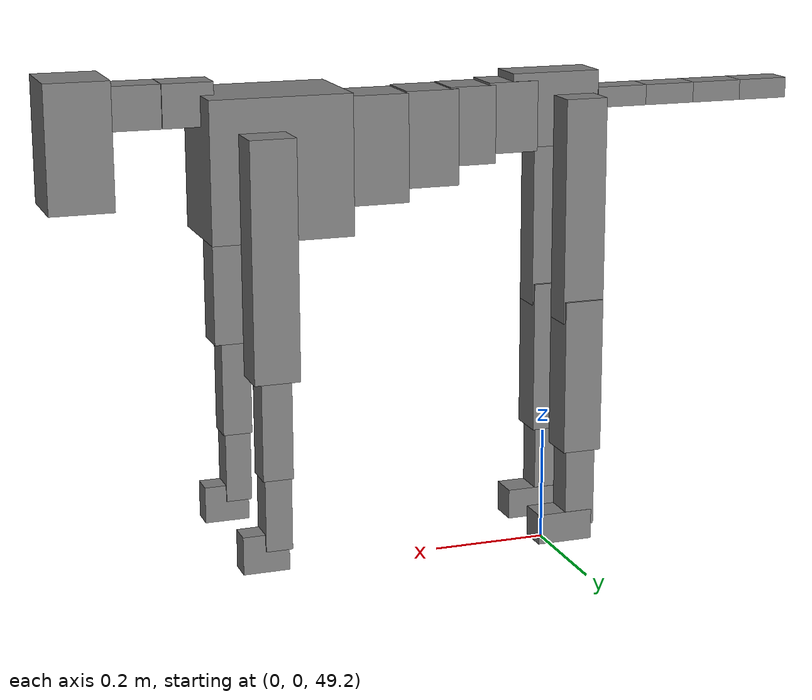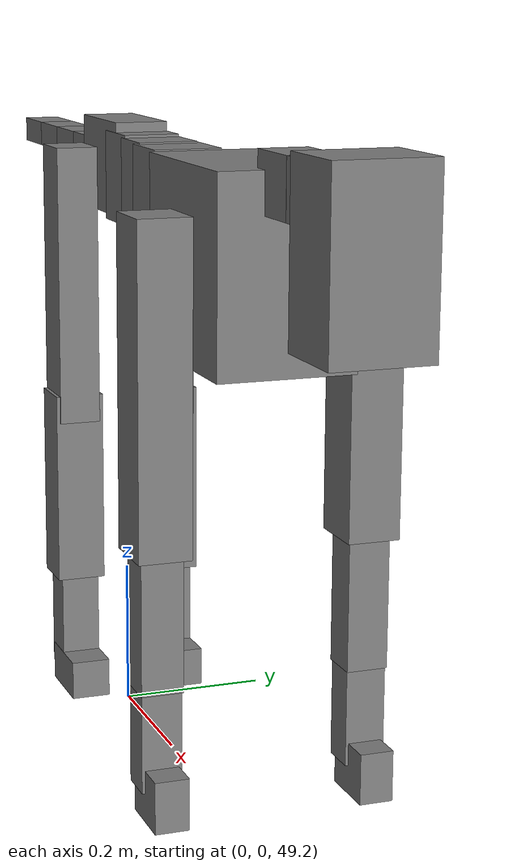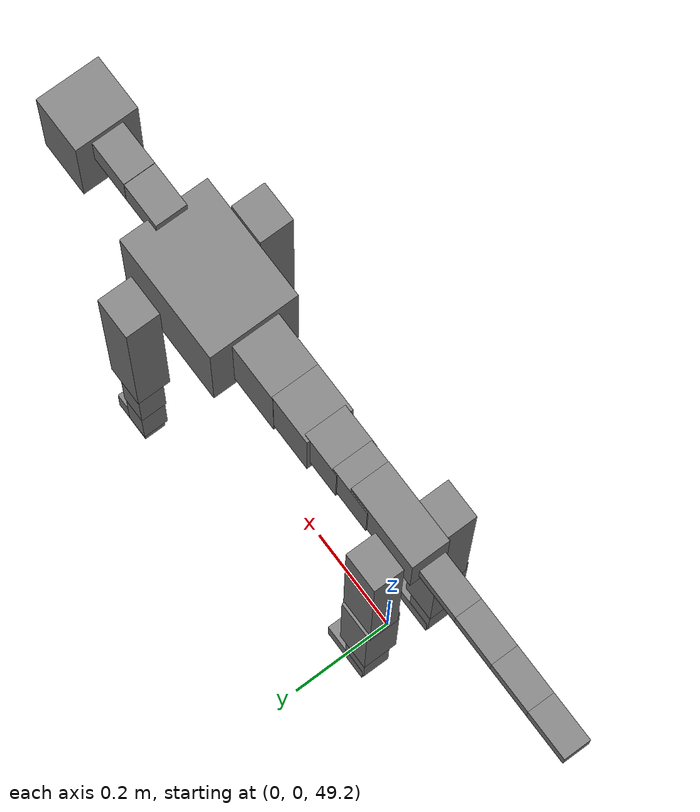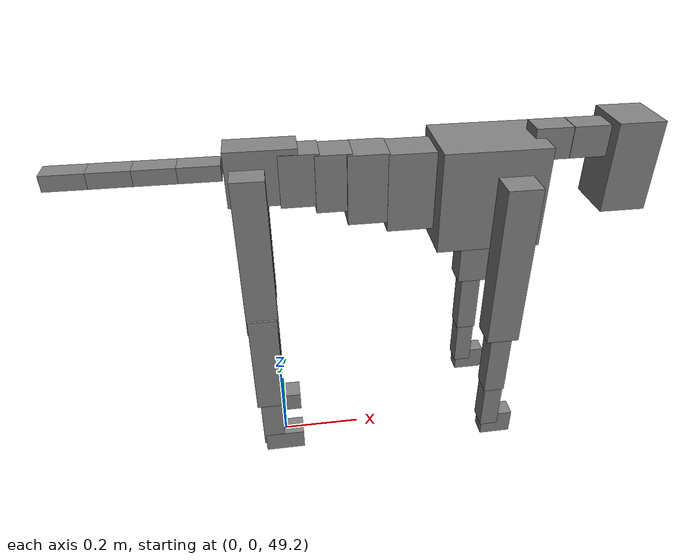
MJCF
<mujoco model="dog">

    <default>
        <joint armature="0.02" stiffness="1" damping="0.2" limited="true"/>
        <geom condim="3" friction="1 0.05 0.05" margin="0.01"/>
        <motor ctrllimited="true" ctrlrange="-1.0 1.0" forcelimited="true" gear="50"/>
    </default>

    <compiler inertiafromgeom="true" angle="radian"/>

    <option timestep="0.016" iterations="50" tolerance="1e-10" solver="Newton" jacobian="dense" cone="pyramidal"/>

    <size nconmax="20000" njmax="60000" nstack="5000000"/>
    <visual>
        <map force="0.1" zfar="30"/>
        <rgba haze="0.15 0.25 0.35 1"/>
        <quality shadowsize="2048"/>
        <global offwidth="800" offheight="800"/>
    </visual>

    <asset>
        <texture type="skybox" builtin="gradient" rgb1="0.3 0.5 0.7" rgb2="0 0 0" width="512" height="512"/>
        <texture name="texplane" type="2d" builtin="checker" rgb1=".2 .3 .4" rgb2=".1 0.15 0.2" width="512" height="512"
                 mark="cross" markrgb=".8 .8 .8"/>
        <texture name="texgeom" type="cube" builtin="flat" mark="cross" width="127" height="1278" rgb1="0.8 0.6 0.4"
                 rgb2="0.8 0.6 0.4" markrgb="1 1 1" random="0.01"/>

        <material name="matplane" reflectance="0.3" texture="texplane" texrepeat="1 1" texuniform="true"/>
        <material name="matgeom" texture="texgeom" texuniform="true" rgba="0.8 0.6 .4 1"/>
    </asset>

    <worldbody>
        <geom name="floor" pos="0 0 0" size="0 0 .25" type="plane" material="matplane" condim="3"/>

        <light directional="false" diffuse=".2 .2 .2" specular="0 0 0" pos="0 0 5" dir="0 0 -1" castshadow="false"/>
        <light mode="targetbodycom" target="torso" directional="false" diffuse=".8 .8 .8" specular="0.3 0.3 0.3"
               pos="0 0 4.0" dir="0 0 -1"/>

        <body name="root" pos="0 0 50">
            <freejoint name="root_1"/>
            <geom type="box" pos="0 0 -0.02" size="0.0774  0.0358  0.063" density="2030"/>

            <body name="spine1" pos="0.054 0 0">
                <joint name="spine1_y" axis="0 1 0" range="0 0.7" limited="true"/>
                <geom type="box" pos="0.02375 0 -0.03" size="0.04375  0.0375  0.05985" density="2030"/>

                <body name="spine2" pos="0.0612 0 0">
                    <joint name="spine2_y" axis="0 1 0" range="-0.15 0.15" limited="true"/>
                    <geom type="box" pos="0.03555  0  -0.04" size="0.04055  0.039  0.06615" density="2030"/>

                    <body name="spine3" pos="0.0730 0 0">
                        <joint name="spine3_y" axis="0 1 0" range="-0.15 0.15" limited="true"/>
                        <geom type="box" pos="0.03555  0  -0.057" size="0.04555  0.0445  0.081" density="2030"/>

                        <body name="spine4" pos="0.0780 0 0">
                            <joint name="spine4_y" axis="0 1 0" range="-0.15 0.15" limited="true"/>
                            <geom type="box" pos="0.05265  0  -0.07" size="0.05265  0.045  0.09135" density="2030"/>

                            <body name="torso" pos="0.1082 0 0">
                                <joint name="torso_y" axis="0 1 0" range="-0.15 0.15" limited="true"/>
                                <geom type="box" pos="0.11925  0  -0.085" size="0.11925  0.085  0.11745"
                                      density="2030"/>

                                <body name="neck1" pos="0.2160  0   0.0180">
                                    <joint name="neck1_y" axis="0 1 0" range="-1.2  -1" limited="true"/>
                                    <geom type="box" pos="0.0423  0  0" size="0.0423  0.03  0.036" density="2325"/>

                                    <body name="neck2" pos="0.0853  0  0">
                                        <joint name="neck2_y" axis="0 1 0" range="0.1  0" limited="true"/>
                                        <geom type="box" pos="0.0423  0  0" size="0.0423  0.03  0.036" density="2325"/>

                                        <body name="head" pos="0.0853  0  0">
                                            <joint name="head_y" axis="0 1 0" range="-0.3  -0.2" limited="true"/>
                                            <geom type="box" pos="0.0531  0  -0.055" size="0.0531  0.06  0.1044"
                                                  density="4030"/>

                                        </body>
                                    </body>
                                </body>

                                <body name="front_shoulder" pos="0.156  0   -0.0480">
                                    <joint name="front_shoulder_y" axis="0 1 0" range="-1 1.5" limited="true"/>
                                    <geom type="box" pos="0 0.13 -0.1713" size="0.0383  0.0327  0.1980" density="1158"/>
                                    <geom type="box" pos="0 -0.13 -0.1713" size="0.0383  0.0327  0.1980"
                                          density="1158"/>

                                    <body name="front_elbow" pos="0  0  -0.3427">
                                        <joint name="front_elbow_y" axis="0 1 0" range="-2 0" limited="true"/>
                                        <geom type="box" pos="0 0.13 -0.0956" size="0.0254  0.0259  0.0956"
                                              density="1081"/>
                                        <geom type="box" pos="0 -0.13 -0.0956" size="0.0254  0.0259  0.0956"
                                              density="1081"/>

                                        <body name="front_wrist" pos="0  0  -0.1912">
                                            <joint name="front_wrist_y" axis="0 1 0" range="-0.2 0" limited="true"/>
                                            <geom type="box" pos="0 0.13 -0.0542" size="0.0224  0.0249  0.0673"
                                                  density="1664"/>
                                            <geom type="box" pos="0 -0.13 -0.0542" size="0.0224  0.0249  0.0673"
                                                  density="1664"/>

                                            <body name="front_finger_end" pos="0  0  -0.1083">
                                                <joint name="front_finger_y" axis="0 1 0" range="-0.4 1"
                                                       limited="true"/>
                                                <geom type="box" pos="0.0212  0.13  -0.0173"
                                                      size="0.0390  0.0212  0.0323" density="1515"/>
                                                <geom type="box" pos="0.0212  -0.13  -0.0173"
                                                      size="0.0390  0.0212  0.0323" density="1515"/>

                                            </body>

                                        </body>
                                    </body>
                                </body>

                            </body>
                        </body>
                    </body>
                </body>
            </body>

            <body name="back_hip" pos="-0.03 0 -0.018">
                <joint name="back_hip_y" axis="0 1 0" range="-1.5 0.3" limited="true"/>
                <geom type="box" pos="0 0.07 -0.1699" size="0.0363  0.0284  0.1927" density="1154"/>
                <geom type="box" pos="0 -0.07 -0.1699" size="0.0363  0.0284  0.1927" density="1154"/>

                <body name="back_knee" pos="0  0  -0.3398">
                    <joint name="back_knee_y" axis="0 1 0" range="0 2.8" limited="true"/>
                    <geom type="box" pos="0 0.07 -0.1185" size="0.0340  0.0335  0.1341" density="1227"/>
                    <geom type="box" pos="0 -0.07 -0.1185" size="0.0340  0.0335  0.1341" density="1227"/>

                    <body name="back_ankle" pos="0  0  -0.2371">
                        <joint name="back_ankle_y" axis="0 1 0" range="-2.2 0" limited="true"/>
                        <geom type="box" pos="0 0.07 -0.0711" size="0.0265  0.0265  0.0823" density="1284"/>
                        <geom type="box" pos="0 -0.07 -0.0711" size="0.0265  0.0265  0.0823" density="1284"/>

                        <body name="back_toe_end" pos="0  0  -0.1421">
                            <joint name="back_toe_y" axis="0 1 0" range="-0.4 1" limited="true"/>
                            <geom type="box" pos="0.0269  0.07  -0.0117" size="0.0493  0.0269  0.0267" density="1515"/>
                            <geom type="box" pos="0.0269  -0.07  -0.0117" size="0.0493  0.0269  0.0267" density="1515"/>

                        </body>
                    </body>
                </body>
            </body>

            <body name="tail1" pos="-0.074 0 -0.006">
                <joint name="tail1_y" axis="0 1 0" range="-0.2 0.2" limited="true"/>
                <geom type="box" pos="-0.0536  0  0" size="0.045  0.025  0.0175" density="1587"/>

                <body name="tail2" pos="-0.09 0 0">
                    <joint name="tail2_y" axis="0 1 0" range="-0.2 0.2" limited="true"/>
                    <geom type="box" pos="-0.0536  0  0" size="0.045  0.025  0.0175" density="1587"/>

                    <body name="tail3" pos="-0.09 0 0">
                        <joint name="tail3_y" axis="0 1 0" range="-0.2 0.2" limited="true"/>
                        <geom type="box" pos="-0.0536  0  0" size="0.045  0.025  0.0175" density="1587"/>

                        <body name="tail4" pos="-0.09 0 0">
                            <joint name="tail4_y" axis="0 1 0" range="-0.2 0.2" limited="true"/>
                            <geom type="box" pos="-0.0536  0  0" size="0.045  0.025  0.0175" density="1587"/>

                        </body>
                    </body>
                </body>
            </body>
        </body>
    </worldbody>

    <actuator>
        <motor joint="spine1_y" forcerange="-150 150     "/>
        <motor joint="spine2_y" forcerange="-150 150     "/>
        <motor joint="spine3_y" forcerange="-150 150     "/>
        <motor joint="spine4_y" forcerange="-150 150     "/>
        <motor joint="torso_y" forcerange="-150 150     "/>
        <motor joint="neck1_y" forcerange="-100 100       "/>
        <motor joint="neck2_y" forcerange="-100 100       "/>
        <motor joint="head_y" forcerange="-150 150       "/>
        <motor joint="front_shoulder_y" forcerange="-151.99 166.00"/>
        <motor joint="front_elbow_y" forcerange="-162.68 125.90"/>
        <motor joint="front_wrist_y" forcerange="-138.10 61.03"/>
        <motor joint="front_finger_y" forcerange="-43.39 29.92"/>
        <motor joint="back_hip_y" forcerange="-346.79 232.54"/>
        <motor joint="back_knee_y" forcerange="-293.95 393.91"/>
        <motor joint="back_angle_y" forcerange="-103.73 219.77"/>
        <motor joint="back_toe_y" forcerange="-104.21 30.76"/>
        <motor joint="tail1_y" forcerange="-50 50     "/>
        <motor joint="tail2_y" forcerange="-50 50     "/>
        <motor joint="tail3_y" forcerange="-50 50     "/>
        <motor joint="tail4_y" forcerange="-50 50     "/>
    </actuator>
</mujoco>
